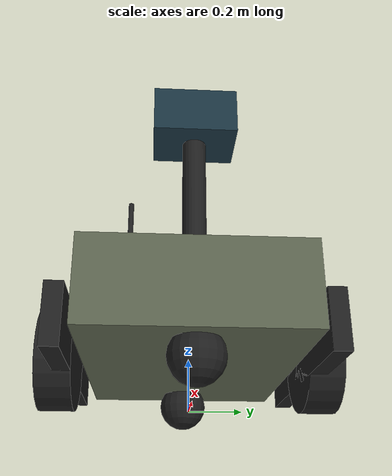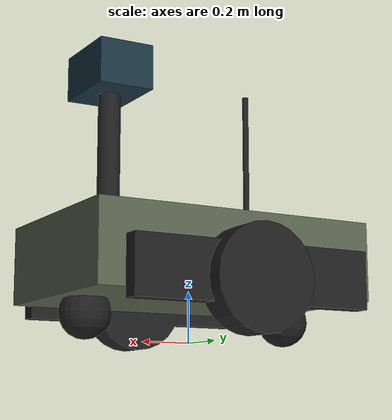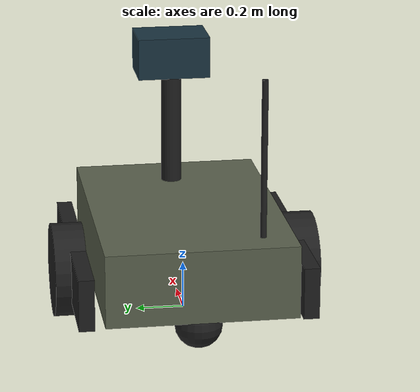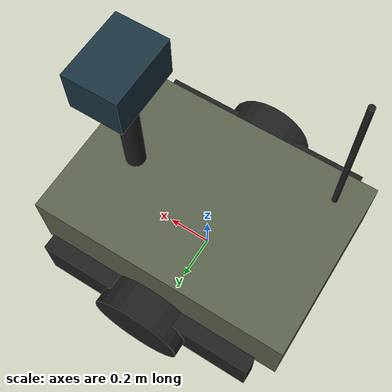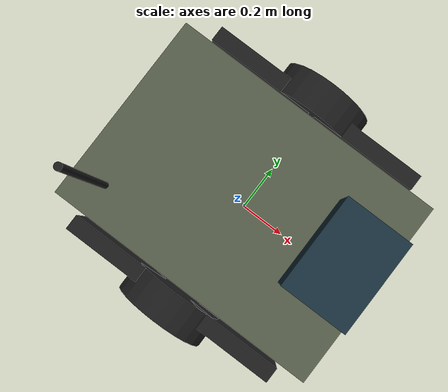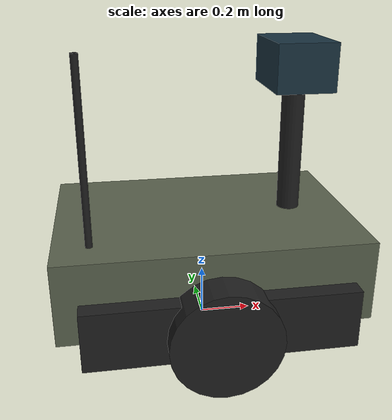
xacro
<?xml version="1.0"?>
<robot xmlns:xacro="http://www.ros.org/wiki/xacro" name="ugv">

  <xacro:arg name="prefix" default=""/>
  <xacro:arg name="color_r" default="0.35"/>
  <xacro:arg name="color_g" default="0.38"/>
  <xacro:arg name="color_b" default="0.30"/>

  <xacro:property name="s" value="2.2"/>   <!-- global visual scale -->

  <material name="body_color">
    <color rgba="$(arg color_r) $(arg color_g) $(arg color_b) 1.0"/>
  </material>
  <material name="dark">
    <color rgba="0.12 0.12 0.12 1.0"/>
  </material>
  <material name="sensor_glass">
    <color rgba="0.1 0.2 0.25 1.0"/>
  </material>

  <xacro:macro name="boxi" params="m x y z">
    <inertial>
      <mass value="${m}"/>
      <inertia ixx="${m*(y*y+z*z)/12}" iyy="${m*(x*x+z*z)/12}" izz="${m*(x*x+y*y)/12}"
               ixy="0" ixz="0" iyz="0"/>
    </inertial>
  </xacro:macro>

  <!-- ================= base ================= -->
  <link name="$(arg prefix)base_link">
    <visual>
      <origin xyz="0 0 ${0.14*s}"/>
      <geometry><box size="${0.52*s} ${0.36*s} ${0.14*s}"/></geometry>
      <material name="body_color"/>
    </visual>
    <collision>
      <origin xyz="0 0 ${0.14*s}"/>
      <geometry><box size="${0.52*s} ${0.36*s} ${0.14*s}"/></geometry>
    </collision>
    <!-- no inertial on the root link: KDL (robot_state_publisher) rejects it -->
  </link>

  <!-- flipper-style side skirts -->
  <link name="$(arg prefix)skirt_left">
    <visual>
      <geometry><box size="${0.44*s} ${0.03*s} ${0.10*s}"/></geometry>
      <material name="dark"/>
    </visual>
    <xacro:boxi m="1.0" x="${0.44*s}" y="${0.03*s}" z="${0.10*s}"/>
  </link>
  <joint name="$(arg prefix)skirt_left_joint" type="fixed">
    <parent link="$(arg prefix)base_link"/>
    <child link="$(arg prefix)skirt_left"/>
    <origin xyz="0 ${0.21*s} ${0.10*s}"/>
  </joint>

  <link name="$(arg prefix)skirt_right">
    <visual>
      <geometry><box size="${0.44*s} ${0.03*s} ${0.10*s}"/></geometry>
      <material name="dark"/>
    </visual>
    <xacro:boxi m="1.0" x="${0.44*s}" y="${0.03*s}" z="${0.10*s}"/>
  </link>
  <joint name="$(arg prefix)skirt_right_joint" type="fixed">
    <parent link="$(arg prefix)base_link"/>
    <child link="$(arg prefix)skirt_right"/>
    <origin xyz="0 ${-0.21*s} ${0.10*s}"/>
  </joint>

  <!-- ================= driven wheels (diff drive) ================= -->
  <xacro:macro name="wheel" params="side y">
    <link name="$(arg prefix)wheel_${side}">
      <visual>
        <origin rpy="${pi/2} 0 0"/>
        <geometry><cylinder radius="${0.09*s}" length="${0.06*s}"/></geometry>
        <material name="dark"/>
      </visual>
      <collision>
        <origin rpy="${pi/2} 0 0"/>
        <geometry><cylinder radius="${0.09*s}" length="${0.06*s}"/></geometry>
      </collision>
      <inertial>
        <mass value="1.2"/>
        <inertia ixx="0.003" iyy="0.003" izz="0.005" ixy="0" ixz="0" iyz="0"/>
      </inertial>
    </link>
    <joint name="$(arg prefix)wheel_${side}_joint" type="continuous">
      <parent link="$(arg prefix)base_link"/>
      <child link="$(arg prefix)wheel_${side}"/>
      <origin xyz="0 ${y*s} ${0.09*s}"/>
      <axis xyz="0 1 0"/>
    </joint>
  </xacro:macro>
  <xacro:wheel side="left"  y="0.225"/>
  <xacro:wheel side="right" y="-0.225"/>

  <!-- passive casters, front + rear -->
  <xacro:macro name="caster" params="pos x">
    <link name="$(arg prefix)caster_${pos}">
      <visual>
        <geometry><sphere radius="${0.045*s}"/></geometry>
        <material name="dark"/>
      </visual>
      <inertial>
        <mass value="0.3"/>
        <inertia ixx="0.0002" iyy="0.0002" izz="0.0002" ixy="0" ixz="0" iyz="0"/>
      </inertial>
    </link>
    <joint name="$(arg prefix)caster_${pos}_joint" type="fixed">
      <parent link="$(arg prefix)base_link"/>
      <child link="$(arg prefix)caster_${pos}"/>
      <origin xyz="${x*s} 0 ${0.045*s}"/>
    </joint>
  </xacro:macro>
  <xacro:caster pos="front" x="0.20"/>
  <xacro:caster pos="rear"  x="-0.20"/>

  <!-- ================= sensor mast + EO/IR head ================= -->
  <link name="$(arg prefix)mast">
    <visual>
      <geometry><cylinder radius="${0.02*s}" length="${0.22*s}"/></geometry>
      <material name="dark"/>
    </visual>
    <inertial>
      <mass value="0.5"/>
      <inertia ixx="0.002" iyy="0.002" izz="0.0001" ixy="0" ixz="0" iyz="0"/>
    </inertial>
  </link>
  <joint name="$(arg prefix)mast_joint" type="fixed">
    <parent link="$(arg prefix)base_link"/>
    <child link="$(arg prefix)mast"/>
    <origin xyz="${0.16*s} 0 ${0.32*s}"/>
  </joint>

  <link name="$(arg prefix)sensor_link">
    <visual>
      <geometry><box size="${0.10*s} ${0.14*s} ${0.08*s}"/></geometry>
      <material name="sensor_glass"/>
    </visual>
    <inertial>
      <mass value="0.8"/>
      <inertia ixx="0.001" iyy="0.001" izz="0.001" ixy="0" ixz="0" iyz="0"/>
    </inertial>
  </link>
  <joint name="$(arg prefix)sensor_joint" type="fixed">
    <parent link="$(arg prefix)mast"/>
    <child link="$(arg prefix)sensor_link"/>
    <origin xyz="0 0 ${0.15*s}"/>
  </joint>

  <!-- comms antenna -->
  <link name="$(arg prefix)antenna">
    <visual>
      <geometry><cylinder radius="${0.006*s}" length="${0.30*s}"/></geometry>
      <material name="dark"/>
    </visual>
    <inertial>
      <mass value="0.05"/>
      <inertia ixx="0.0001" iyy="0.0001" izz="0.0001" ixy="0" ixz="0" iyz="0"/>
    </inertial>
  </link>
  <joint name="$(arg prefix)antenna_joint" type="fixed">
    <parent link="$(arg prefix)base_link"/>
    <child link="$(arg prefix)antenna"/>
    <origin xyz="${-0.20*s} ${-0.12*s} ${0.36*s}"/>
  </joint>

</robot>
